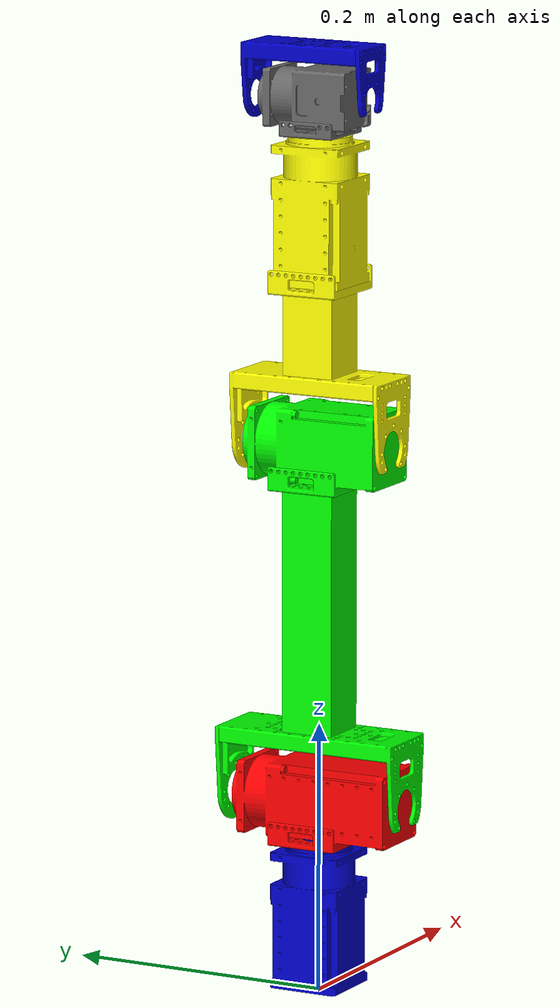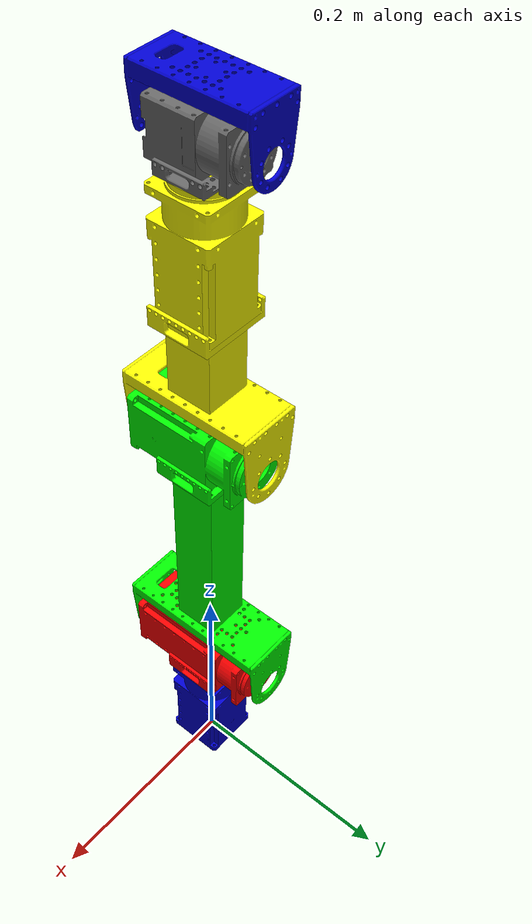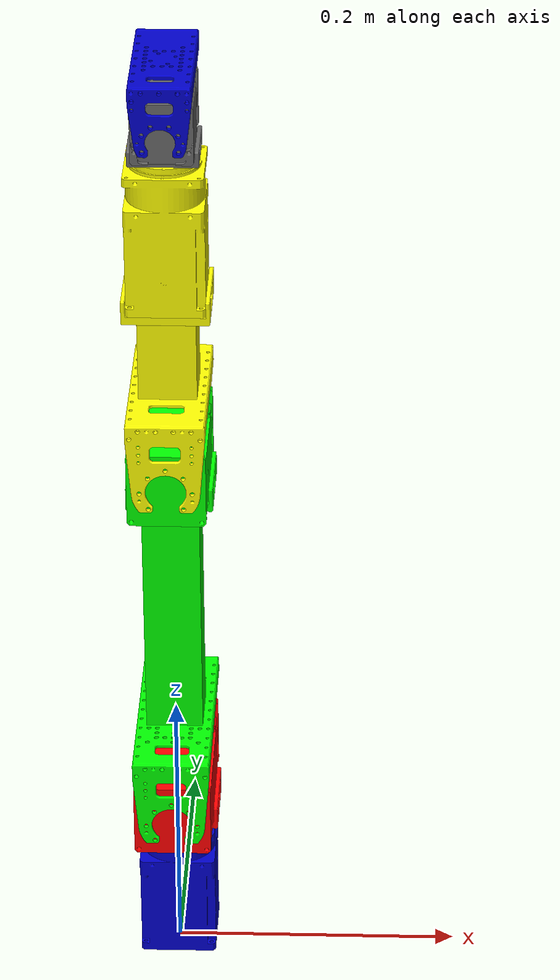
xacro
<?xml version="1.0"?>
<robot name="omnigrasper"  xmlns:xacro="http://ros.org/wiki/xacro">
  <!-- common includes -->
  <xacro:include filename="$(find omni_description)/urdf/common.xacro" />
  <!-- Omnigrasper arm -->
  <xacro:include filename="$(find omni_description)/urdf/omnigrasper_arm/arm.urdf.xacro" />
  <!-- materials for visualization -->
  <xacro:include filename="$(find omni_description)/urdf/materials.urdf.xacro" />

  <!-- Now we can start using the macros xacro:included above to define the actual omnipointer -->

   <!-- foot for arm-->
   <link name="base_link">
     <inertial>
        <origin xyz="0 0 0" rpy="0 0 0"/>
        <mass value="10.0"/>
        <inertia ixx="0.1"  ixy="0"  ixz="0" iyy="0.1" iyz="0" izz="0.1" />
     </inertial>
   </link>

  <xacro:omnigrasper_arm name="arm" parent="base_link">
    <origin xyz="0 0 0.004" rpy="0 0 0" />
  </xacro:omnigrasper_arm>
</robot>

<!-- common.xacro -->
<robot xmlns:xacro="http://ros.org/wiki/xacro">
    <xacro:property name="M_PI" value="3.1415926535897931" />

    <xacro:macro name="box_link" params="name width depth length mass color">
        <link name="${name}">
            <visual>
                <origin xyz="0 0 ${length/2.0}" rpy="0 0 0"/>
                <geometry>
                  <box size="${width} ${depth} ${length}"/>
                </geometry>
                <material name="${color}"/>
            </visual>
            <collision>
                <origin xyz="0 0 ${length/2.0}" rpy="0 0 0"/>
                <geometry>
                    <box size="${width} ${depth} ${length}"/>
                </geometry>
            </collision>
            <inertial>
                <!-- CENTER OF MASS -->
                <origin xyz="0 0 ${length/2.0}" rpy="0 0 0"/>
                <mass value="${mass}"/>
                <!-- box inertia: 1/12*m(y^2+z^2), ... -->
                <inertia ixx="${1/12*mass*(depth*depth+length*length)}" ixy="0" ixz="0" iyy="${1/12*mass*(width*width+length*length)}" iyz="0" izz="${1/12*mass*(width*width+depth*depth)}"/>
              </inertial>
          </link>
    </xacro:macro>

    <xacro:macro name="box_vci" params="name mass size_x size_y size_z xyz color">
        <!-- For Box Visual Collision Intertial -->
        <visual>
            <origin xyz="${xyz}" rpy="0 0 0"/>
            <geometry name="${name}">
              <box size="${size_x} ${size_y} ${size_z}"/>
            </geometry>
            <material name="${color}"/>
        </visual>
        <collision>
            <origin xyz="${xyz}" rpy="0 0 0"/>
            <geometry>
                <box size="${size_x} ${size_y} ${size_z}"/>
            </geometry>
        </collision>
        <inertial>
            <!-- center of mass -->
            <origin xyz="${xyz}" rpy="0 0 0"/>
            <mass value="${mass}"/>
            <!-- box inertia: 1/12*m(y^2+z^2), ... -->
            <inertia ixx="${1/12*mass*(size_y**2 + size_z**2)}" ixy="0" ixz="0"
                iyy="${1/12*mass*(size_x**2 + size_z**2)}" iyz="0"
                izz="${1/12*mass*(size_x**2 + size_y**2)}"/>
          </inertial>
    </xacro:macro>

    <xacro:macro name="box_ci" params="name mass size_x size_y size_z
        xyz color">
        <!-- For Box Collision Intertial -->
        <collision>
            <origin xyz="${xyz}" rpy="0 0 0"/>
            <geometry>
                <box size="${size_x} ${size_y} ${size_z}"/>
            </geometry>
        </collision>
        <inertial>
            <!-- center of mass -->
            <origin xyz="${xyz}" rpy="0 0 0"/>
            <mass value="${mass}"/>
            <!-- box inertia: 1/12*m(y^2+z^2), ... -->
            <inertia ixx="${1/12*mass*(size_y**2 + size_z**2)}" ixy="0" ixz="0"
                iyy="${1/12*mass*(size_x**2 + size_z**2)}" iyz="0"
                izz="${1/12*mass*(size_x**2 + size_y**2)}"/>
          </inertial>
    </xacro:macro>
</robot>

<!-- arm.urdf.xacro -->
<robot name="omnigrasper" xmlns:xacro="http://ros.org/wiki/xacro">

    <!-- Xacro macro for the arm -->
    <xacro:macro name="omnigrasper_arm" params="parent name *origin">
        <joint name="${parent}_${name}_base" type="fixed">
            <parent link="${parent}"/>
            <child link="${name}_base"/>
            <xacro:insert_block name="origin"/>
        </joint>
        <link name="${name}_base"/>

        <joint name="${name}_base_arm_0" type="fixed">
            <parent link="${name}_base"/>
            <child link="arm_0"/>
            <origin xyz="0 0 0.141"/>
        </joint>
        <link name="arm_0">
            <visual>
                <origin xyz="0 0 ${-0.001*(54/2+6+108)}" rpy="${M_PI/2} 0 0"/>
                <geometry>
                    <mesh filename="package://omni_description/stl/L54-30-S500-R.STL" scale="0.001 0.001 0.001"/>
                </geometry>
                <material name="omni/Blue"/>
            </visual>
            <collision>
                <origin xyz="0 0 ${-0.001*(54/2+6+108/2)}" rpy="0 0 0"/>
                <geometry>
                    <box size="0.054 0.054 0.108"/>
                </geometry>
            </collision>
        </link>

        <joint name="arm_0_1" type="revolute">
            <parent link="arm_0"/>
            <child link="arm_1"/>
            <limit effort="2.5" velocity="${28.7*M_PI/30}"
                lower="${-M_PI}" upper="${M_PI}"/>
            <safety_controller k_position="3"
                k_velocity="1000"
                soft_lower_limit="${-M_PI}"
                soft_upper_limit="${M_PI}" />
            <origin rpy="0 0 0" xyz="0 0 0"/>
            <axis xyz="0 0 1"/>
        </joint>
        <link name="arm_1">
            <!-- TODO Parts to add : frame adaptor FRP54-A110K, idler FRP54-I110 -->
            <xacro:box_ci name="H54-200-S500" mass="0.855"
                size_x="0.054" size_y="0.132" size_z="0.054"
                xyz="0 0 0" color="omni/Red"/>

            <visual>
                <origin xyz="0 ${-0.132/2} 0"/>
                <geometry>
                    <mesh filename="package://omni_description/stl/H54-200-S500-R.STL" scale="0.001 0.001 0.001"/>
                </geometry>
                <material name="omni/Red"/>
            </visual>

            <!-- FRP54-A110 -->
            <visual>
                <origin xyz="0 0 ${-0.054/2-0.006}" rpy="${M_PI/2} 0 0"/>
                <geometry>
                    <mesh filename="package://omni_description/stl/FRP54-A110.STL" scale="0.001 0.001 0.001"/>
                </geometry>
                <material name="omni/Red"/>
            </visual>
        </link>

        <joint name="arm_1_2" type="revolute">
            <parent link="arm_1"/>
            <child link="arm_2"/>
            <limit effort="44.7" velocity="${33.1*M_PI/30}"
                lower="${1.34-M_PI}" upper="${4.94-M_PI}"/>
            <safety_controller k_position="3"
                k_velocity="1000"
                soft_lower_limit="${(1.34-M_PI)}"
                soft_upper_limit="${(4.94-M_PI)}" />
            <origin rpy="${M_PI/2} ${-M_PI/2} 0" xyz="0 0 0"/>
            <axis xyz="0 0 1"/>
        </joint>
        <link name="arm_2">
            <!-- TODO Parts to add : idler FRP54-I110 -->
            <!-- TODO: take the moments of inertia provided by manufacturer -->
            <xacro:box_vci name="profile_2" mass="${1.38*0.180}"
                size_x="0.180" size_y="0.040" size_z="0.040"
                xyz="${0.001*(51+180/2)} 0 0" color="omni/Green"/>
            <!-- FRP54-H220 -->
            <visual>
                <origin xyz="0 0 0" rpy="0 ${M_PI} ${-M_PI/2}"/>
                <geometry>
                    <mesh filename="package://omni_description/stl/FRP54-H220.STL" scale="0.001 0.001 0.001"/>
                </geometry>
                <material name="omni/Green"/>
            </visual>
            <!-- FRP54-A110 -->
            <visual>
                <origin xyz="${0.001*(51 + 180)} 0 0" rpy="0 0 ${-M_PI/2}"/>
                <geometry>
                    <mesh filename="package://omni_description/stl/FRP54-A110.STL" scale="0.001 0.001 0.001"/>
                </geometry>
                <material name="omni/Green"/>
            </visual>
        </link>

        <joint name="arm_2_sub" type="fixed">
            <parent link="arm_2"/>
            <child link="arm_2_sub"/>
            <origin xyz="0 0 0"/>
        </joint>
        <link name="arm_2_sub">
            -
            <xacro:box_ci name="L54_50_S500" mass="0.662"
                size_x="0.054" size_y="0.054" size_z="0.114"
                xyz="${0.001*(51+180+6+54/2)} 0 0" color="omni/Green"/>
            <visual>
                <origin xyz="${0.001*(51+180+6+54/2)} 0 ${0.114/2}"
                    rpy="${-M_PI/2} 0 0"/>
                <geometry>
                    <mesh filename="package://omni_description/stl/L54-50-S500-R.STL" scale="0.001 0.001 0.001"/>
                </geometry>
                <material name="omni/Green"/>
            </visual>
        </link>

        <joint name="arm_2_3" type="revolute">
            <parent link="arm_2"/>
            <child link="arm_3"/>
            <limit effort="14" velocity="${16*M_PI/30}"
                lower="${1.32-M_PI}" upper="${4.40-M_PI}"/>
            <safety_controller k_position="3"
                k_velocity="1000"
                soft_lower_limit="${(1.32-M_PI)}"
                soft_upper_limit="${(4.50-M_PI)}" />
            <origin rpy="0 0 ${-M_PI/2}" xyz="0.264 0 0"/>
            <axis xyz="0 0 1"/>
        </joint>
        <link name="arm_3">
            <!-- TODO Parts to add : idler FRP54-I110 -->
            <!-- TODO: take the moments of inertia provided by manufacturer -->
            <xacro:box_vci name="profile_3" mass="${1.38*0.060}"
                size_x="0.040" size_y="0.060" size_z="0.040"
                xyz="0 ${0.001*(51+60/2)} 0" color="omni/Yellow"/>
            <!-- FRP54-H120 -->
            <visual>
                <origin xyz="0 0 0" rpy="0 ${M_PI} 0"/>
                <geometry>
                    <mesh filename="package://omni_description/stl/FRP54-H120.STL" scale="0.001 0.001 0.001"/>
                </geometry>
                <material name="omni/Yellow"/>
            </visual>
            <!-- FRP54-A110 -->
            <visual>
                <origin xyz="0 ${0.001*(51+60)} 0" rpy="0 0 0"/>
                <geometry>
                    <mesh filename="package://omni_description/stl/FRP54-A110.STL" scale="0.001 0.001 0.001"/>
                </geometry>
                <material name="omni/Yellow"/>
            </visual>
        </link>

        <joint name="arm_3_sub" type="fixed">
            <parent link="arm_3"/>
            <child link="arm_3_sub"/>
            <origin xyz="0 0 0"/>
        </joint>
        <link name="arm_3_sub">
            <xacro:box_ci name="L54_30_S500" mass="0.612"
                size_x="0.054" size_y="0.108" size_z="0.054"
                xyz="0 ${0.001*(51+60+6+108/2)} 0" color="omni/Yellow"/>
            <visual>
                <origin xyz="0 ${0.001*(51+60+6)} 0" rpy="0 ${-M_PI} 0"/>
                <geometry>
                    <mesh filename="package://omni_description/stl/L54-30-S500-R.STL" scale="0.001 0.001 0.001"/>
                </geometry>
                <material name="omni/Yellow"/>
            </visual>
        </link>

        <joint name="arm_3_4" type="revolute">
            <parent link="arm_3"/>
            <child link="arm_4"/>
            <limit effort="2.5" velocity="${28.7*M_PI/30}"
                lower="${-M_PI}" upper="${M_PI}"/>
            <safety_controller k_position="3"
                k_velocity="1000"
                soft_lower_limit="${-M_PI}"
                soft_upper_limit="${M_PI}" />
            <origin rpy="${-M_PI/2} 0 0" xyz="0 0.252 0"/>
            <axis xyz="0 0 1"/>
        </joint>
        <link name="arm_4">
            <!-- TODO Parts to add : idler FRP42-I110 -->
            <xacro:box_ci name="L42_10_S300" mass="0.257"
                size_x="0.042" size_y="0.072" size_z="0.042"
                xyz="0 0.006 0" color="omni/DarkGrey"/>
            <visual>
                <origin xyz="0 ${-0.072/2 + 0.006} 0" rpy="0 0 0"/>
                <geometry>
                    <mesh filename="package://omni_description/stl/L42-10-S300-R.STL" scale="0.001 0.001 0.001"/>
                </geometry>
                <material name="omni/DarkGrey"/>
            </visual>
            <!-- FRP42-A110 -->
            <visual>
                <origin xyz="0 0 ${-0.001*(42/2+6)}" rpy="${M_PI/2} 0 0"/>
                <geometry>
                    <mesh filename="package://omni_description/stl/FRP42-A110.STL" scale="0.001 0.001 0.001"/>
                </geometry>
                <material name="omni/DarkGrey"/>
            </visual>
        </link>

        <joint name="arm_4_5" type="revolute">
            <parent link="arm_4"/>
            <child link="arm_5"/>
            <limit effort="1.2" velocity="${29.7*M_PI/30}"
                lower="${-M_PI/2+M_PI/5}" upper="${M_PI/2-M_PI/5}"/>
            <safety_controller k_position="2"
                k_velocity="1000"
                soft_lower_limit="${-M_PI/2+M_PI/5}"
                soft_upper_limit="${M_PI/2-M_PI/5}" />
            <origin rpy="${M_PI/2} 0 0" xyz="0 0 0"/>
            <axis xyz="0 0 1"/>
        </joint>
        <link name="arm_5">
            <!-- FIXME: The weight is made up, as well as the center of mass -->
            <xacro:box_ci name="L42_10_S300" mass="0.0857"
                size_x="0.042" size_y="0.006" size_z="0.082"
                xyz="0 0.039 -0.006" color="omni/Blue"/>
            <!-- FRP42-H120 -->
            <visual>
                <origin xyz="0 0 -0.006" rpy="0 0 0"/>
                <geometry>
                    <mesh filename="package://omni_description/stl/FRP42-H120.STL" scale="0.001 0.001 0.001"/>
                </geometry>
                <material name="omni/Blue"/>
            </visual>
        </link>

        <joint name="arm_5_end" type="fixed">
            <parent link="arm_5"/>
            <child link="arm_link"/>
            <origin xyz="0 0.039 -0.006"/>
        </joint>
        <link name="arm_link"/>

        <joint name="arm_end_versaball" type="fixed">
            <parent link="arm_link"/>
            <child link="versaball_link"/>
            <origin rpy="${-M_PI/2} 0 0" xyz="0 0.081 0"/>
        </joint>
        <link name="versaball_link"/>
    </xacro:macro>
    <!-- end of arm links/joints -->
</robot>

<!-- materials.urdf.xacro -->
<robot>
  <material name="omni/Blue">
    <color rgba="0 0 0.8 1"/>
  </material>

  <material name="omni/Red">
    <color rgba="1 0 0 1"/>
  </material>

  <material name="omni/Green">
    <color rgba="0 1 0 1"/>
  </material>

  <material name="omni/Yellow">
    <color rgba="1 1 0 1"/>
  </material>

  <material name="omni/LightGrey">
    <color rgba="0.6 0.6 0.6 1"/>
  </material>

  <material name="omni/DarkGrey">
    <color rgba="0.4 0.4 0.4 1"/>
  </material>
</robot>
